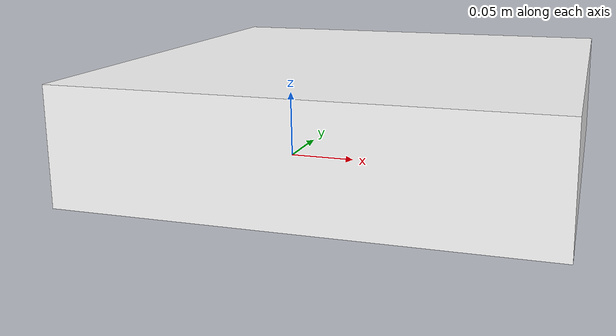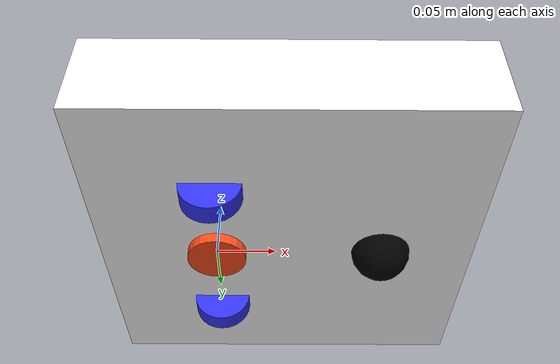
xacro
<?xml version="1.0"?>
<robot xmlns:xacro="http://www.ros.org/wiki/xacro">

    <xacro:include filename="inertial_macros.xacro"/>

    <material name="white">
        <color rgba=" 1 1 1 1" />
    </material>
    <material name="orange">
        <color rgba=" 1 0.3 0.1 1" />
    </material>
    <material name="blue">
        <color rgba=" 0.2 0.2 1 1" />
    </material>
    <material name="black">
        <color rgba=" 0 0 0 1" />
    </material>

    <!-- BASE LINK -->

    <link name="base_link">
    </link>

    <!-- BASE FOOTPRINT LINK-->

    <joint name="base_footprint_joint" type="fixed">
        <parent link="base_link"/>
        <child link="base_footprint"/>
        <origin xyz="0 0 0" rpy="0 0 0 "/>
    </joint>

    <link name="base_footprint">
    </link>

    <!-- CHASSIS LINK-->

    <joint name ="chassis_joint" type="fixed">
        <parent link="base_link"/>
        <child link="chassis"/>
        <origin xyz="-0.1 0 0"/>
    </joint>

    <link name="chassis">
        <visual>
            <origin xyz="0.16 0 0.04"/>
            <geometry>
                <box size="0.32 0.32 0.08"/>
            </geometry>
            <material name="white"/>
        </visual>
        <collision>
            <origin xyz="0.16 0 0.04"/>
            <geometry>
                <box size="0.32 0.32 0.08"/>
            </geometry>
        </collision>
        <xacro:inertial_box mass="1" x="0.32" y="0.32" z="0.08">
            <origin xyz="0.16 0 0.04" rpy="0 0 0 "/>
        </xacro:inertial_box>
    </link>

    <!-- LEFT WHEEL LINK-->

    <joint name='left_wheel_joint' type="continuous">
        <parent link="base_link"/>
        <child link="left_wheel"/>
        <origin xyz="0 0.077 0 " rpy="-${pi/2} 0 0"/>
        <axis xyz="0 0 1"/>
    </joint>

    <link name="left_wheel">
        <visual>
            <geometry>
                <cylinder radius="0.025" length="0.018"/>
            </geometry>
            <material name="blue"/>
        </visual>
        <collision>
            <geometry>
                <cylinder radius="0.025" length="0.018"/>
            </geometry>
        </collision>
        <xacro:inertial_cylinder mass="0.03" length="0.018" radius="0.025">
            <origin xyz="0 0 0" rpy="0 0 0"/>
        </xacro:inertial_cylinder>
    </link>

    <!-- RIGHT WHEEL LINK-->

    <joint name='right_wheel_joint' type="continuous">
        <parent link="base_link"/>
        <child link="right_wheel"/>
        <origin xyz="0 -0.077 0 " rpy="${pi/2} 0 0"/>
        <axis xyz="0 0 -1"/>
    </joint>

    <link name="right_wheel">
        <visual>
            <geometry>
                <cylinder radius="0.025" length="0.018"/>
            </geometry>
            <material name="blue"/>
        </visual>
        <collision>
            <geometry>
                <cylinder radius="0.025" length="0.018"/>
            </geometry>
        </collision>
        <xacro:inertial_cylinder mass="0.03" length="0.018" radius="0.025">
            <origin xyz="0 0 0" rpy="0 0 0"/>
        </xacro:inertial_cylinder>
    </link>

    <!-- CASTER WHEEL LINK-->

    <joint name="caster_wheel_joint" type="fixed">
        <parent link="chassis"/>
        <child link="caster_wheel"/>
        <origin xyz="0.24 0 0 "/>
    </joint>

    <link name="caster_wheel">
        <visual>
            <geometry>
                <sphere radius="0.025"/>
            </geometry>
            <material name="black"/>
        </visual>
        <collision>
            <geometry>
                <sphere radius="0.025"/>
            </geometry>
        </collision>
        <xacro:inertial_sphere mass="0.02" radius="0.025">
            <origin xyz="0 0 0" rpy="0 0 0"/>
        </xacro:inertial_sphere>
    </link>
    <gazebo reference="caster_wheel">
        <mu1> 0 </mu1>
        <mu2> 0 </mu2>
    </gazebo>

    <!-- LASER FRAME-->
    <joint name="laser_frame_joint" type="fixed">
        <parent link="base_link"/>
        <child link="laser_frame"/>
        <origin xyz="0 0 0" rpy="0 0 0"/>
    </joint>

    <link name="laser_frame">
        <visual>
            <geometry>
                <cylinder radius="0.025" length="0.018"/>
            </geometry>
            <material name="orange"/>
        </visual>
        <collision>
            <geometry>
                <cylinder radius="0.025" length="0.018"/>
            </geometry>
        </collision>
        <xacro:inertial_cylinder mass="0.03" length="0.018" radius="0.025">
            <origin xyz="0 0 0" rpy="0 0 0"/>
        </xacro:inertial_cylinder>
    </link>
</robot>
